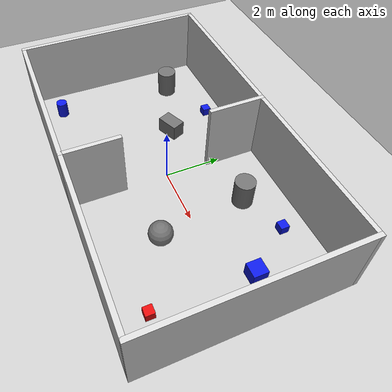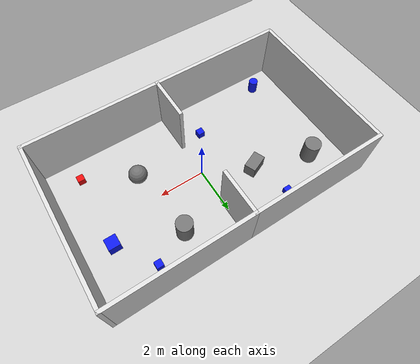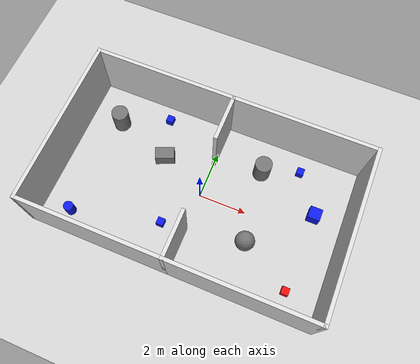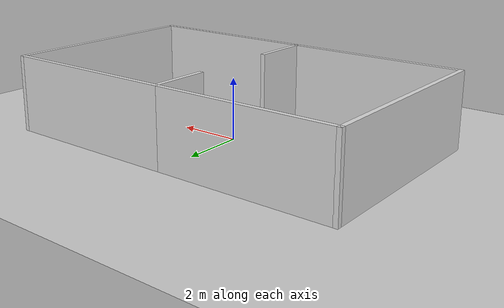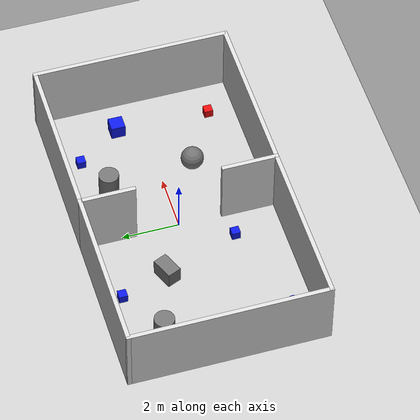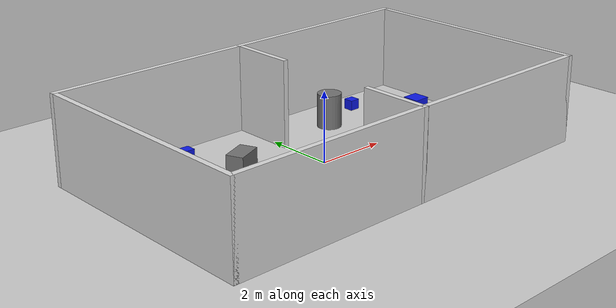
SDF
<?xml version="1.0" ?>
<sdf version="1.6">
  <world name="object_search_world">

    <physics type="ode">
      <max_step_size>0.001</max_step_size>
      <real_time_factor>1.0</real_time_factor>
      <real_time_update_rate>1000</real_time_update_rate>
    </physics>

    <scene>
      <ambient>0.6 0.6 0.6 1</ambient>
      <background>0.7 0.7 0.7 1</background>
      <shadows>false</shadows>
    </scene>

    <gui>
      <camera name="user_camera">
        <pose>0 -0.5 14 0 1.5 1.5708</pose>
      </camera>
    </gui>

    <include><uri>model://sun</uri></include>
    <include><uri>model://ground_plane</uri></include>

    <!-- Walls and partition (your hand-built layout, centred on the origin) -->
    <model name="object_search_walls">
      <static>true</static>
      <pose>0 0 0 0 0 0</pose>
      <link name="Wall_0">
        <pose>-5.85 0 0 0 0 -1.5708</pose>
        <collision name="Wall_0_collision"><pose>0 0 1.25 0 0 0</pose><geometry><box><size>7 0.15 2.5</size></box></geometry></collision>
        <visual name="Wall_0_visual"><pose>0 0 1.25 0 0 0</pose><geometry><box><size>7 0.15 2.5</size></box></geometry><material><ambient>0.85 0.85 0.85 1</ambient><diffuse>0.85 0.85 0.85 1</diffuse></material></visual>
      </link>
      <link name="Wall_1">
        <pose>-2.925 -3.425 0 0 0 0</pose>
        <collision name="Wall_1_collision"><pose>0 0 1.25 0 0 0</pose><geometry><box><size>6 0.15 2.5</size></box></geometry></collision>
        <visual name="Wall_1_visual"><pose>0 0 1.25 0 0 0</pose><geometry><box><size>6 0.15 2.5</size></box></geometry><material><ambient>0.85 0.85 0.85 1</ambient><diffuse>0.85 0.85 0.85 1</diffuse></material></visual>
      </link>
      <link name="Wall_2">
        <pose>0 -2.5 0 0 0 1.5708</pose>
        <collision name="Wall_2_collision"><pose>0 0 1.25 0 0 0</pose><geometry><box><size>2 0.15 2.5</size></box></geometry></collision>
        <visual name="Wall_2_visual"><pose>0 0 1.25 0 0 0</pose><geometry><box><size>2 0.15 2.5</size></box></geometry><material><ambient>0.85 0.85 0.85 1</ambient><diffuse>0.85 0.85 0.85 1</diffuse></material></visual>
      </link>
      <link name="Wall_4">
        <pose>2.925 -3.425 0 0 0 0</pose>
        <collision name="Wall_4_collision"><pose>0 0 1.25 0 0 0</pose><geometry><box><size>6 0.15 2.5</size></box></geometry></collision>
        <visual name="Wall_4_visual"><pose>0 0 1.25 0 0 0</pose><geometry><box><size>6 0.15 2.5</size></box></geometry><material><ambient>0.85 0.85 0.85 1</ambient><diffuse>0.85 0.85 0.85 1</diffuse></material></visual>
      </link>
      <link name="Wall_5">
        <pose>5.85 0 0 0 0 1.5708</pose>
        <collision name="Wall_5_collision"><pose>0 0 1.25 0 0 0</pose><geometry><box><size>7 0.15 2.5</size></box></geometry></collision>
        <visual name="Wall_5_visual"><pose>0 0 1.25 0 0 0</pose><geometry><box><size>7 0.15 2.5</size></box></geometry><material><ambient>0.85 0.85 0.85 1</ambient><diffuse>0.85 0.85 0.85 1</diffuse></material></visual>
      </link>
      <link name="Wall_6">
        <pose>2.925 3.425 0 0 0 3.14159</pose>
        <collision name="Wall_6_collision"><pose>0 0 1.25 0 0 0</pose><geometry><box><size>6 0.15 2.5</size></box></geometry></collision>
        <visual name="Wall_6_visual"><pose>0 0 1.25 0 0 0</pose><geometry><box><size>6 0.15 2.5</size></box></geometry><material><ambient>0.85 0.85 0.85 1</ambient><diffuse>0.85 0.85 0.85 1</diffuse></material></visual>
      </link>
      <link name="Wall_7">
        <pose>0 2.5 0 0 0 -1.5708</pose>
        <collision name="Wall_7_collision"><pose>0 0 1.25 0 0 0</pose><geometry><box><size>2 0.15 2.5</size></box></geometry></collision>
        <visual name="Wall_7_visual"><pose>0 0 1.25 0 0 0</pose><geometry><box><size>2 0.15 2.5</size></box></geometry><material><ambient>0.85 0.85 0.85 1</ambient><diffuse>0.85 0.85 0.85 1</diffuse></material></visual>
      </link>
      <link name="Wall_9">
        <pose>-2.925 3.425 0 0 0 0</pose>
        <collision name="Wall_9_collision"><pose>0 0 1.25 0 0 0</pose><geometry><box><size>6 0.15 2.5</size></box></geometry></collision>
        <visual name="Wall_9_visual"><pose>0 0 1.25 0 0 0</pose><geometry><box><size>6 0.15 2.5</size></box></geometry><material><ambient>0.85 0.85 0.85 1</ambient><diffuse>0.85 0.85 0.85 1</diffuse></material></visual>
      </link>
    </model>

    <!-- Grey obstacles -->
    <model name="cylinder_1">
      <static>true</static>
      <pose>-4.4 1.8 0.5 0 0 0</pose>
      <link name="link">
        <collision name="collision"><geometry><cylinder><radius>0.35</radius><length>1.0</length></cylinder></geometry></collision>
        <visual name="visual"><geometry><cylinder><radius>0.35</radius><length>1.0</length></cylinder></geometry><material><ambient>0.45 0.45 0.45 1</ambient><diffuse>0.45 0.45 0.45 1</diffuse></material></visual>
      </link>
    </model>
    <model name="cylinder_2">
      <static>true</static>
      <pose>2.0 1.9 0.5 0 0 0</pose>
      <link name="link">
        <collision name="collision"><geometry><cylinder><radius>0.35</radius><length>1.0</length></cylinder></geometry></collision>
        <visual name="visual"><geometry><cylinder><radius>0.35</radius><length>1.0</length></cylinder></geometry><material><ambient>0.45 0.45 0.45 1</ambient><diffuse>0.45 0.45 0.45 1</diffuse></material></visual>
      </link>
    </model>
    <model name="sphere_1">
      <static>true</static>
      <pose>2.4 -1.2 0.4 0 0 0</pose>
      <link name="link">
        <collision name="collision"><geometry><sphere><radius>0.4</radius></sphere></geometry></collision>
        <visual name="visual"><geometry><sphere><radius>0.4</radius></sphere></geometry><material><ambient>0.45 0.45 0.45 1</ambient><diffuse>0.45 0.45 0.45 1</diffuse></material></visual>
      </link>
    </model>
    <model name="crate_1">
      <static>true</static>
      <pose>-2.0 1.0 0.3 0 0 0.4</pose>
      <link name="link">
        <collision name="collision"><geometry><box><size>0.8 0.5 0.6</size></box></geometry></collision>
        <visual name="visual"><geometry><box><size>0.8 0.5 0.6</size></box></geometry><material><ambient>0.45 0.45 0.45 1</ambient><diffuse>0.45 0.45 0.45 1</diffuse></material></visual>
      </link>
    </model>
    <!-- Blue distractors (same colour family, different shapes and sizes) -->
    <model name="blue_box_1">
      <static>true</static>
      <pose>-1.0 -1.7 0.15 0 0 0</pose>
      <link name="link">
        <collision name="collision"><geometry><box><size>0.3 0.3 0.3</size></box></geometry></collision>
        <visual name="visual"><geometry><box><size>0.3 0.3 0.3</size></box></geometry><material><ambient>0.05 0.1 0.9 1</ambient><diffuse>0.05 0.1 0.9 1</diffuse></material></visual>
      </link>
    </model>
    <model name="blue_box_2">
      <static>true</static>
      <pose>3.5 2.5 0.15 0 0 0</pose>
      <link name="link">
        <collision name="collision"><geometry><box><size>0.3 0.3 0.3</size></box></geometry></collision>
        <visual name="visual"><geometry><box><size>0.3 0.3 0.3</size></box></geometry><material><ambient>0.05 0.1 0.9 1</ambient><diffuse>0.05 0.1 0.9 1</diffuse></material></visual>
      </link>
    </model>
    <model name="blue_box_3">
      <static>true</static>
      <pose>-2.5 2.7 0.15 0 0 0</pose>
      <link name="link">
        <collision name="collision"><geometry><box><size>0.3 0.3 0.3</size></box></geometry></collision>
        <visual name="visual"><geometry><box><size>0.3 0.3 0.3</size></box></geometry><material><ambient>0.05 0.1 0.9 1</ambient><diffuse>0.05 0.1 0.9 1</diffuse></material></visual>
      </link>
    </model>
    <model name="blue_cylinder_1">
      <static>true</static>
      <pose>-4.6 -2.6 0.3 0 0 0</pose>
      <link name="link">
        <collision name="collision"><geometry><cylinder><radius>0.2</radius><length>0.6</length></cylinder></geometry></collision>
        <visual name="visual"><geometry><cylinder><radius>0.2</radius><length>0.6</length></cylinder></geometry><material><ambient>0.05 0.1 0.9 1</ambient><diffuse>0.05 0.1 0.9 1</diffuse></material></visual>
      </link>
    </model>
    <model name="blue_crate_1">
      <static>true</static>
      <pose>4.6 0.9 0.25 0 0 0</pose>
      <link name="link">
        <collision name="collision"><geometry><box><size>0.5 0.5 0.5</size></box></geometry></collision>
        <visual name="visual"><geometry><box><size>0.5 0.5 0.5</size></box></geometry><material><ambient>0.05 0.1 0.9 1</ambient><diffuse>0.05 0.1 0.9 1</diffuse></material></visual>
      </link>
    </model>
    <!-- Target: the only red object -->
    <model name="red_box">
      <static>true</static>
      <pose>4.5 -2.4 0.15 0 0 0</pose>
      <link name="link">
        <collision name="collision"><geometry><box><size>0.3 0.3 0.3</size></box></geometry></collision>
        <visual name="visual"><geometry><box><size>0.3 0.3 0.3</size></box></geometry><material><ambient>0.9 0.05 0.05 1</ambient><diffuse>0.9 0.05 0.05 1</diffuse></material></visual>
      </link>
    </model>
    <plugin name="gazebo_ros_state" filename="libgazebo_ros_state.so">
      <ros>
        <namespace>/gazebo</namespace>
      </ros>
      <update_rate>2.0</update_rate>
    </plugin>
  </world>
</sdf>
